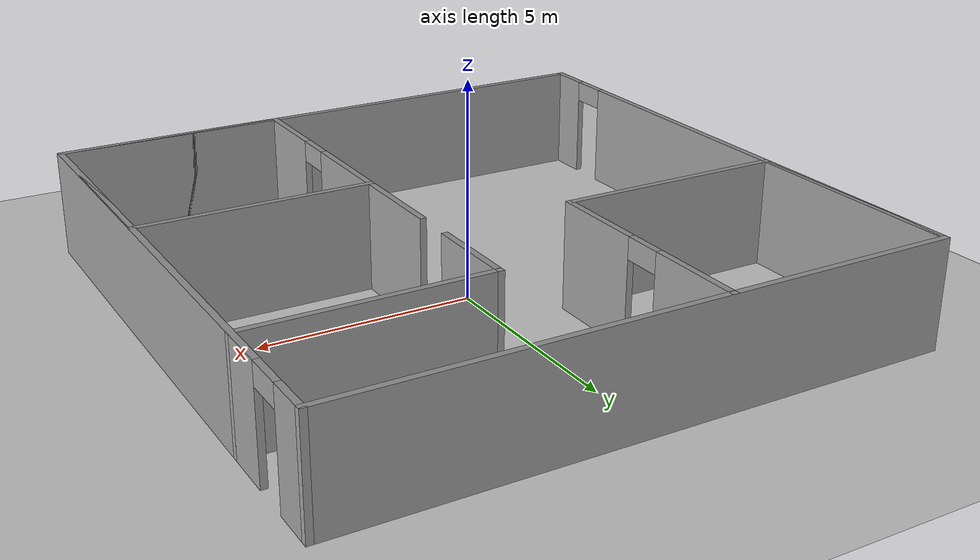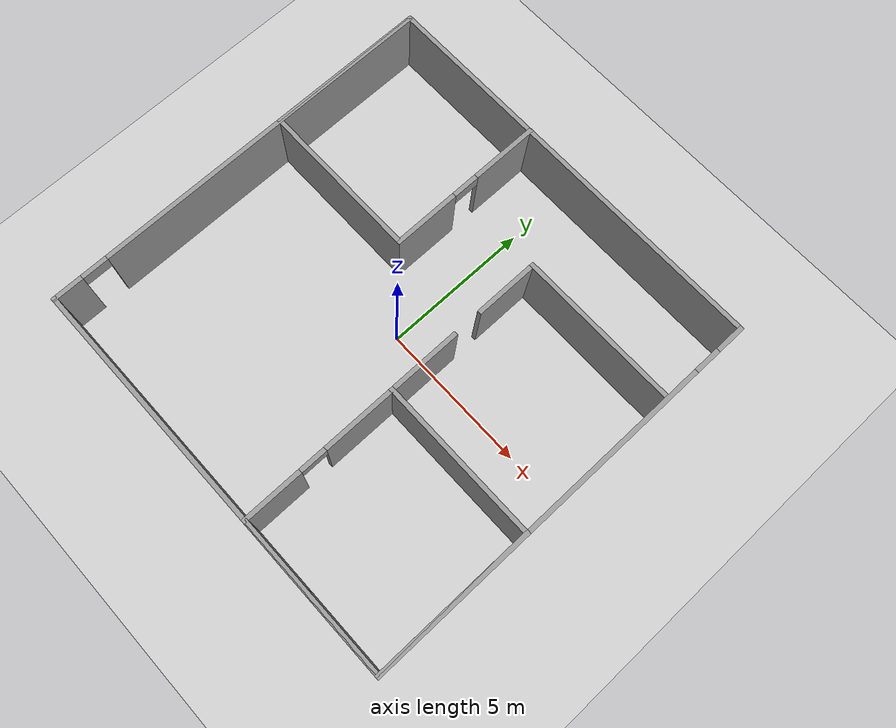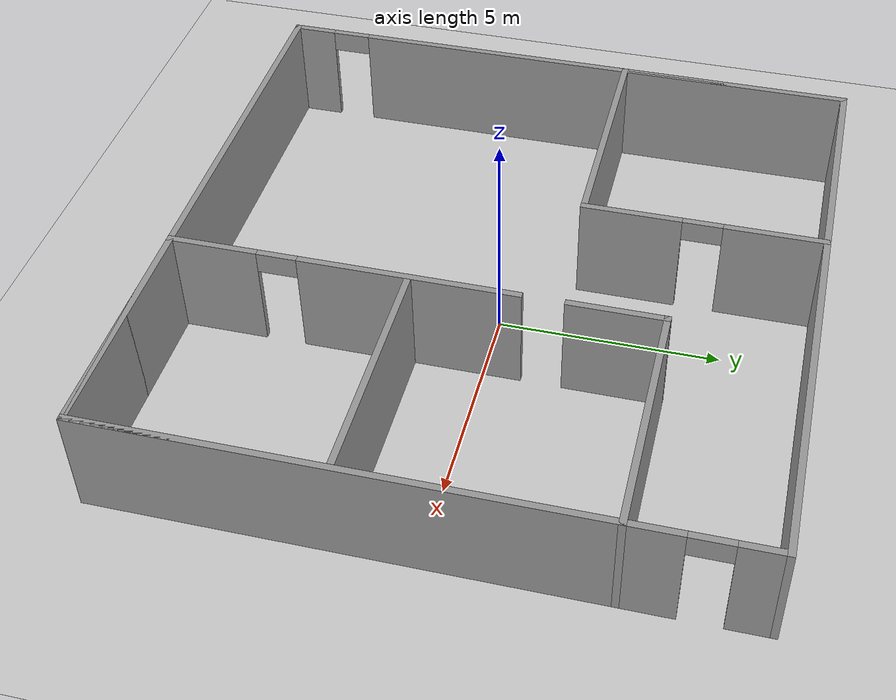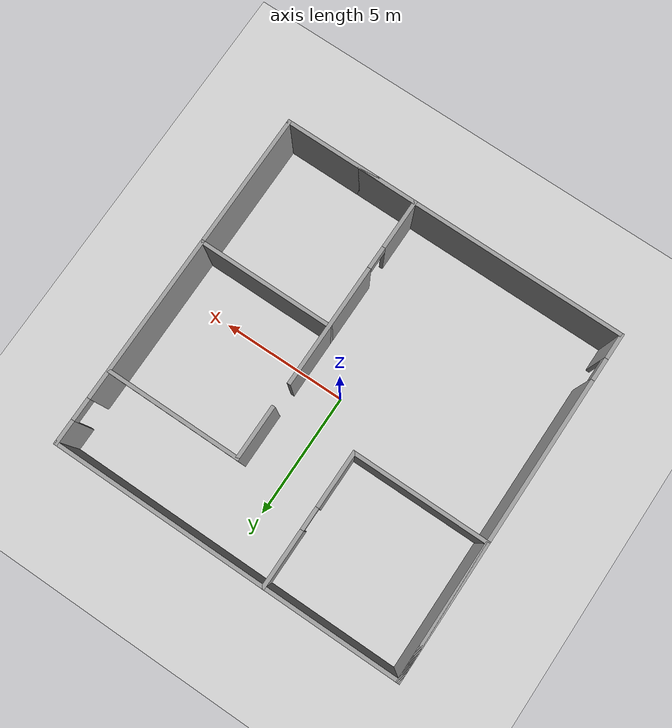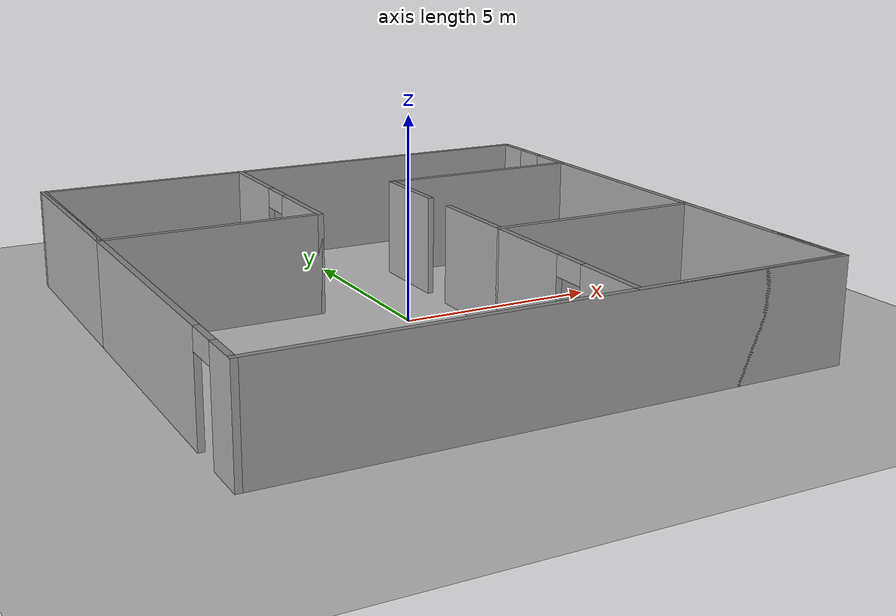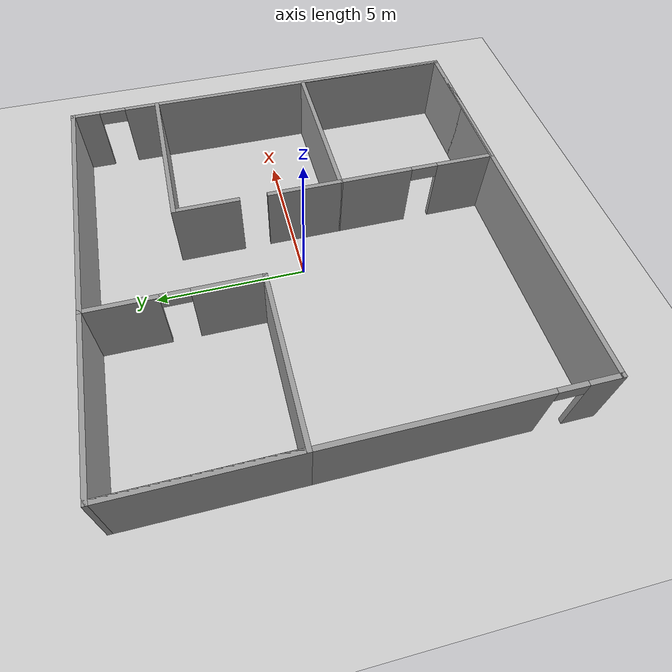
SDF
<sdf version="1.7">
 <world name="default">
  <light name="sun" type="directional">
   <pose>0 0 10 0 -0 0</pose>
   <diffuse>0.8 0.8 0.8 1</diffuse>
   <specular>0.2 0.2 0.2 1</specular>
   <attenuation>
    <range>1000</range>
    <constant>0.9</constant>
    <linear>0.01</linear>
    <quadratic>0.001</quadratic>
   </attenuation>
   <direction>-0.5 0.1 -0.9</direction>
   <spot><inner_angle>0</inner_angle><outer_angle>0</outer_angle><falloff>0</falloff></spot>
  </light>
  <model name="ground_plane">
   <static>1</static>
   <link name="link">
    <collision name="collision">
     <geometry><plane><normal>0 0 1</normal><size>100 100</size></plane></geometry>
     <surface><friction><ode><mu>100</mu><mu2>50</mu2></ode></friction></surface>
    </collision>
    <visual name="visual">
     <cast_shadows>0</cast_shadows>
     <geometry><plane><normal>0 0 1</normal><size>100 100</size></plane></geometry>
     <material>
      <script><uri>file://media/materials/scripts/gazebo.material</uri><name>Gazebo/Grey</name></script>
     </material>
    </visual>
   </link>
  </model>
  <gravity>0 0 -9.8</gravity>
  <magnetic_field>6e-06 2.3e-05 -4.2e-05</magnetic_field>
  <atmosphere type="adiabatic"/>
  <physics type="ode">
   <max_step_size>0.001</max_step_size>
   <real_time_factor>1</real_time_factor>
   <real_time_update_rate>1000</real_time_update_rate>
  </physics>
  <scene><ambient>0.4 0.4 0.4 1</ambient><background>0.7 0.7 0.7 1</background><shadows>1</shadows></scene>
  <audio><device>default</device></audio>
  <spherical_coordinates>
   <surface_model>EARTH_WGS84</surface_model>
   <latitude_deg>0</latitude_deg>
   <longitude_deg>0</longitude_deg>
   <elevation>0</elevation>
   <heading_deg>0</heading_deg>
  </spherical_coordinates>
  <model name="mapB">
   <pose>-0.029011 -0.034947 0 0 -0 0</pose>
   <link name="Wall_0">
    <collision name="Wall_0_Collision">
     <geometry><box><size>14 0.15 2.5</size></box></geometry>
     <pose>0 0 1.25 0 -0 0</pose>
    </collision>
    <visual name="Wall_0_Visual">
     <pose>0 0 1.25 0 -0 0</pose>
     <geometry><box><size>14 0.15 2.5</size></box></geometry>
     <material>
      <script><uri>file://media/materials/scripts/gazebo.material</uri><name>Gazebo/Grey</name></script>
      <ambient>1 1 1 1</ambient>
     </material>
     <meta><layer>0</layer></meta>
    </visual>
    <pose>0 -6.925 0 0 -0 0</pose>
   </link>
   <link name="Wall_1">
    <pose>6.925 0 0 0 -0 1.5708</pose>
    <visual name="Wall_1_Visual_0">
     <pose>-0.957397 0 1.25 0 -0 0</pose>
     <geometry><box><size>12.0852 0.15 2.5</size></box></geometry>
     <material>
      <script><uri>file://media/materials/scripts/gazebo.material</uri><name>Gazebo/Grey</name></script>
      <ambient>1 1 1 1</ambient>
     </material>
     <meta><layer>0</layer></meta>
    </visual>
    <collision name="Wall_1_Collision_0">
     <geometry><box><size>12.0852 0.15 2.5</size></box></geometry>
     <pose>-0.957397 0 1.25 0 -0 0</pose>
    </collision>
    <visual name="Wall_1_Visual_1">
     <pose>6.4926 0 1.25 0 -0 0</pose>
     <geometry><box><size>1.01479 0.15 2.5</size></box></geometry>
     <material>
      <script><uri>file://media/materials/scripts/gazebo.material</uri><name>Gazebo/Grey</name></script>
      <ambient>1 1 1 1</ambient>
     </material>
     <meta><layer>0</layer></meta>
    </visual>
    <collision name="Wall_1_Collision_1">
     <geometry><box><size>1.01479 0.15 2.5</size></box></geometry>
     <pose>6.4926 0 1.25 0 -0 0</pose>
    </collision>
    <visual name="Wall_1_Visual_2">
     <pose>5.53521 0 2.25 0 -0 0</pose>
     <geometry><box><size>0.9 0.15 0.5</size></box></geometry>
     <material>
      <script><uri>file://media/materials/scripts/gazebo.material</uri><name>Gazebo/Grey</name></script>
      <ambient>1 1 1 1</ambient>
     </material>
     <meta><layer>0</layer></meta>
    </visual>
    <collision name="Wall_1_Collision_2">
     <geometry><box><size>0.9 0.15 0.5</size></box></geometry>
     <pose>5.53521 0 2.25 0 -0 0</pose>
    </collision>
   </link>
   <link name="Wall_10">
    <collision name="Wall_10_Collision">
     <geometry><box><size>5.5 0.15 2.5</size></box></geometry>
     <pose>0 0 1.25 0 -0 0</pose>
    </collision>
    <visual name="Wall_10_Visual">
     <pose>0 0 1.25 0 -0 0</pose>
     <geometry><box><size>5.5 0.15 2.5</size></box></geometry>
     <material>
      <script><uri>file://media/materials/scripts/gazebo.material</uri><name>Gazebo/Grey</name></script>
      <ambient>1 1 1 1</ambient>
     </material>
     <meta><layer>0</layer></meta>
    </visual>
    <pose>4.25 -1.575 0 0 -0 3.14159</pose>
   </link>
   <link name="Wall_12">
    <collision name="Wall_12_Collision">
     <geometry><box><size>5.5 0.15 2.5</size></box></geometry>
     <pose>0 0 1.25 0 -0 0</pose>
    </collision>
    <visual name="Wall_12_Visual">
     <pose>0 0 1.25 0 -0 0</pose>
     <geometry><box><size>5.5 0.15 2.5</size></box></geometry>
     <material>
      <script><uri>file://media/materials/scripts/gazebo.material</uri><name>Gazebo/Grey</name></script>
      <ambient>1 1 1 1</ambient>
     </material>
     <meta><layer>0</layer></meta>
    </visual>
    <pose>-6.925 4.25 0 0 -0 -1.5708</pose>
   </link>
   <link name="Wall_13">
    <collision name="Wall_13_Collision">
     <geometry><box><size>5.5 0.15 2.5</size></box></geometry>
     <pose>0 0 1.25 0 -0 0</pose>
    </collision>
    <visual name="Wall_13_Visual">
     <pose>0 0 1.25 0 -0 0</pose>
     <geometry><box><size>5.5 0.15 2.5</size></box></geometry>
     <material>
      <script><uri>file://media/materials/scripts/gazebo.material</uri><name>Gazebo/Grey</name></script>
      <ambient>1 1 1 1</ambient>
     </material>
     <meta><layer>0</layer></meta>
    </visual>
    <pose>-4.25 1.575 0 0 -0 0</pose>
   </link>
   <link name="Wall_14">
    <pose>-1.575 4.25 0 0 -0 1.5708</pose>
    <visual name="Wall_14_Visual_0">
     <pose>-1.61109 0 1.25 0 -0 0</pose>
     <geometry><box><size>2.27782 0.15 2.5</size></box></geometry>
     <material>
      <script><uri>file://media/materials/scripts/gazebo.material</uri><name>Gazebo/Grey</name></script>
      <ambient>1 1 1 1</ambient>
     </material>
     <meta><layer>0</layer></meta>
    </visual>
    <collision name="Wall_14_Collision_0">
     <geometry><box><size>2.27782 0.15 2.5</size></box></geometry>
     <pose>-1.61109 0 1.25 0 -0 0</pose>
    </collision>
    <visual name="Wall_14_Visual_1">
     <pose>1.58891 0 1.25 0 -0 0</pose>
     <geometry><box><size>2.32218 0.15 2.5</size></box></geometry>
     <material>
      <script><uri>file://media/materials/scripts/gazebo.material</uri><name>Gazebo/Grey</name></script>
      <ambient>1 1 1 1</ambient>
     </material>
     <meta><layer>0</layer></meta>
    </visual>
    <collision name="Wall_14_Collision_1">
     <geometry><box><size>2.32218 0.15 2.5</size></box></geometry>
     <pose>1.58891 0 1.25 0 -0 0</pose>
    </collision>
    <visual name="Wall_14_Visual_2">
     <pose>-0.022176 0 2.25 0 -0 0</pose>
     <geometry><box><size>0.9 0.15 0.5</size></box></geometry>
     <material>
      <script><uri>file://media/materials/scripts/gazebo.material</uri><name>Gazebo/Grey</name></script>
      <ambient>1 1 1 1</ambient>
     </material>
     <meta><layer>0</layer></meta>
    </visual>
    <collision name="Wall_14_Collision_2">
     <geometry><box><size>0.9 0.15 0.5</size></box></geometry>
     <pose>-0.022176 0 2.25 0 -0 0</pose>
    </collision>
   </link>
   <link name="Wall_2">
    <collision name="Wall_2_Collision">
     <geometry><box><size>14 0.15 2.5</size></box></geometry>
     <pose>0 0 1.25 0 -0 0</pose>
    </collision>
    <visual name="Wall_2_Visual">
     <pose>0 0 1.25 0 -0 0</pose>
     <geometry><box><size>14 0.15 2.5</size></box></geometry>
     <material>
      <script><uri>file://media/materials/scripts/gazebo.material</uri><name>Gazebo/Grey</name></script>
      <ambient>1 1 1 1</ambient>
     </material>
     <meta><layer>0</layer></meta>
    </visual>
    <pose>0 6.925 0 0 -0 3.14159</pose>
   </link>
   <link name="Wall_3">
    <pose>-6.925 0 0 0 -0 -1.5708</pose>
    <visual name="Wall_3_Visual_0">
     <pose>-0.981484 0 1.25 0 -0 0</pose>
     <geometry><box><size>12.037 0.15 2.5</size></box></geometry>
     <material>
      <script><uri>file://media/materials/scripts/gazebo.material</uri><name>Gazebo/Grey</name></script>
      <ambient>1 1 1 1</ambient>
     </material>
     <meta><layer>0</layer></meta>
    </visual>
    <collision name="Wall_3_Collision_0">
     <geometry><box><size>12.037 0.15 2.5</size></box></geometry>
     <pose>-0.981484 0 1.25 0 -0 0</pose>
    </collision>
    <visual name="Wall_3_Visual_1">
     <pose>6.46852 0 1.25 0 -0 0</pose>
     <geometry><box><size>1.06297 0.15 2.5</size></box></geometry>
     <material>
      <script><uri>file://media/materials/scripts/gazebo.material</uri><name>Gazebo/Grey</name></script>
      <ambient>1 1 1 1</ambient>
     </material>
     <meta><layer>0</layer></meta>
    </visual>
    <collision name="Wall_3_Collision_1">
     <geometry><box><size>1.06297 0.15 2.5</size></box></geometry>
     <pose>6.46852 0 1.25 0 -0 0</pose>
    </collision>
    <visual name="Wall_3_Visual_2">
     <pose>5.48703 0 2.25 0 -0 0</pose>
     <geometry><box><size>0.9 0.15 0.5</size></box></geometry>
     <material>
      <script><uri>file://media/materials/scripts/gazebo.material</uri><name>Gazebo/Grey</name></script>
      <ambient>1 1 1 1</ambient>
     </material>
     <meta><layer>0</layer></meta>
    </visual>
    <collision name="Wall_3_Collision_2">
     <geometry><box><size>0.9 0.15 0.5</size></box></geometry>
     <pose>5.48703 0 2.25 0 -0 0</pose>
    </collision>
   </link>
   <link name="Wall_5">
    <collision name="Wall_5_Collision">
     <geometry><box><size>5.5 0.15 2.5</size></box></geometry>
     <pose>0 0 1.25 0 -0 0</pose>
    </collision>
    <visual name="Wall_5_Visual">
     <pose>0 0 1.25 0 -0 0</pose>
     <geometry><box><size>5.5 0.15 2.5</size></box></geometry>
     <material>
      <script><uri>file://media/materials/scripts/gazebo.material</uri><name>Gazebo/Grey</name></script>
      <ambient>1 1 1 1</ambient>
     </material>
     <meta><layer>0</layer></meta>
    </visual>
    <pose>4.25 -6.925 0 0 -0 3.14159</pose>
   </link>
   <link name="Wall_6">
    <pose>1.575 -1.5 0 0 -0 1.5708</pose>
    <visual name="Wall_6_Visual_0">
     <pose>-4.47573 0 1.25 0 -0 0</pose>
     <geometry><box><size>2.04853 0.15 2.5</size></box></geometry>
     <material>
      <script><uri>file://media/materials/scripts/gazebo.material</uri><name>Gazebo/Grey</name></script>
      <ambient>1 1 1 1</ambient>
     </material>
     <meta><layer>0</layer></meta>
    </visual>
    <collision name="Wall_6_Collision_0">
     <geometry><box><size>2.04853 0.15 2.5</size></box></geometry>
     <pose>-4.47573 0 1.25 0 -0 0</pose>
    </collision>
    <visual name="Wall_6_Visual_1">
     <pose>-0.084998 0 1.25 0 -0 0</pose>
     <geometry><box><size>4.93294 0.15 2.5</size></box></geometry>
     <material>
      <script><uri>file://media/materials/scripts/gazebo.material</uri><name>Gazebo/Grey</name></script>
      <ambient>1 1 1 1</ambient>
     </material>
     <meta><layer>0</layer></meta>
    </visual>
    <collision name="Wall_6_Collision_1">
     <geometry><box><size>4.93294 0.15 2.5</size></box></geometry>
     <pose>-0.084998 0 1.25 0 -0 0</pose>
    </collision>
    <visual name="Wall_6_Visual_2">
     <pose>4.39074 0 1.25 0 -0 0</pose>
     <geometry><box><size>2.21853 0.15 2.5</size></box></geometry>
     <material>
      <script><uri>file://media/materials/scripts/gazebo.material</uri><name>Gazebo/Grey</name></script>
      <ambient>1 1 1 1</ambient>
     </material>
     <meta><layer>0</layer></meta>
    </visual>
    <collision name="Wall_6_Collision_2">
     <geometry><box><size>2.21853 0.15 2.5</size></box></geometry>
     <pose>4.39074 0 1.25 0 -0 0</pose>
    </collision>
    <visual name="Wall_6_Visual_3">
     <pose>-3.00147 0 2.25 0 -0 0</pose>
     <geometry><box><size>0.9 0.15 0.5</size></box></geometry>
     <material>
      <script><uri>file://media/materials/scripts/gazebo.material</uri><name>Gazebo/Grey</name></script>
      <ambient>1 1 1 1</ambient>
     </material>
     <meta><layer>0</layer></meta>
    </visual>
    <collision name="Wall_6_Collision_3">
     <geometry><box><size>0.9 0.15 0.5</size></box></geometry>
     <pose>-3.00147 0 2.25 0 -0 0</pose>
    </collision>
    <visual name="Wall_6_Visual_4">
     <pose>2.38147 0 2.25 0 -0 0</pose>
     <geometry><box><size>0 0.15 0.5</size></box></geometry>
     <material>
      <script><uri>file://media/materials/scripts/gazebo.material</uri><name>Gazebo/Grey</name></script>
      <ambient>1 1 1 1</ambient>
     </material>
     <meta><layer>0</layer></meta>
    </visual>
    <collision name="Wall_6_Collision_4">
     <geometry><box><size>0 0.15 0.5</size></box></geometry>
     <pose>2.38147 0 2.25 0 -0 0</pose>
    </collision>
   </link>
   <link name="Wall_7">
    <collision name="Wall_7_Collision">
     <geometry><box><size>5.5 0.15 2.5</size></box></geometry>
     <pose>0 0 1.25 0 -0 0</pose>
    </collision>
    <visual name="Wall_7_Visual">
     <pose>0 0 1.25 0 -0 0</pose>
     <geometry><box><size>5.5 0.15 2.5</size></box></geometry>
     <material>
      <script><uri>file://media/materials/scripts/gazebo.material</uri><name>Gazebo/Grey</name></script>
      <ambient>1 1 1 1</ambient>
     </material>
     <meta><layer>0</layer></meta>
    </visual>
    <pose>4.25 3.925 0 0 -0 0</pose>
   </link>
   <link name="Wall_9">
    <collision name="Wall_9_Collision">
     <geometry><box><size>5.5 0.15 2.5</size></box></geometry>
     <pose>0 0 1.25 0 -0 0</pose>
    </collision>
    <visual name="Wall_9_Visual">
     <pose>0 0 1.25 0 -0 0</pose>
     <geometry><box><size>5.5 0.15 2.5</size></box></geometry>
     <material>
      <script><uri>file://media/materials/scripts/gazebo.material</uri><name>Gazebo/Grey</name></script>
      <ambient>1 1 1 1</ambient>
     </material>
     <meta><layer>0</layer></meta>
    </visual>
    <pose>6.925 -4.25 0 0 -0 1.5708</pose>
   </link>
   <static>1</static>
  </model>
 </world>
</sdf>
